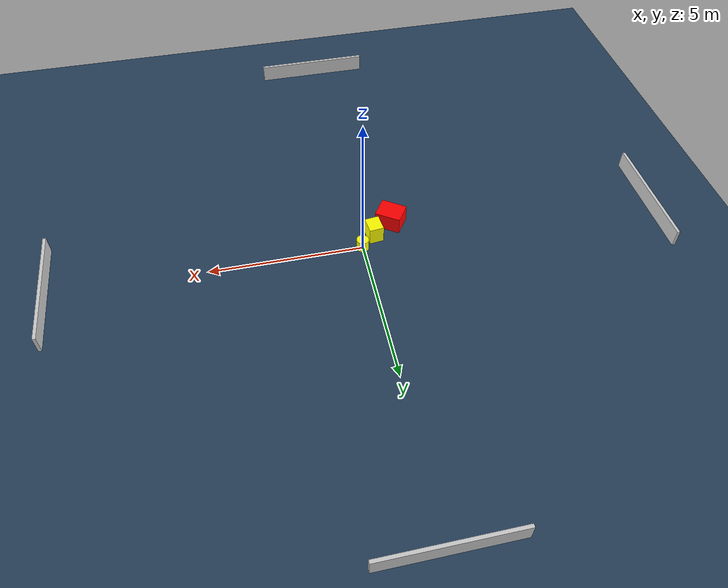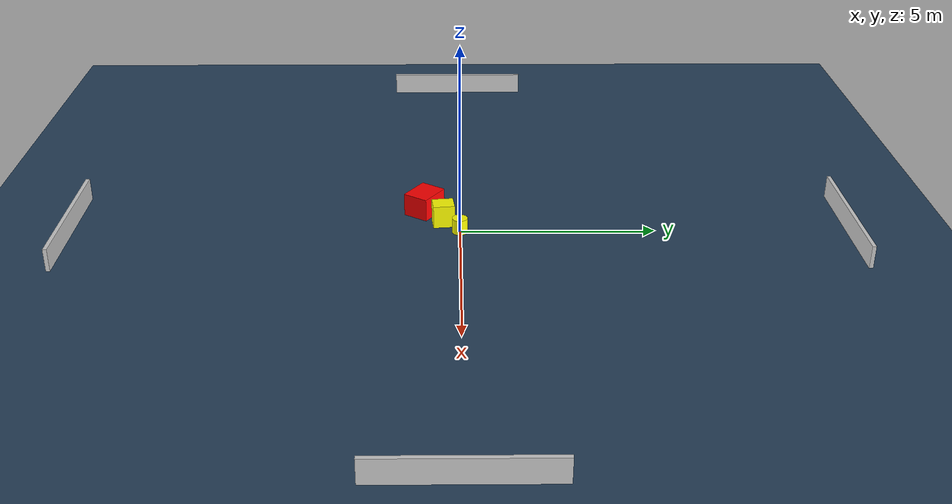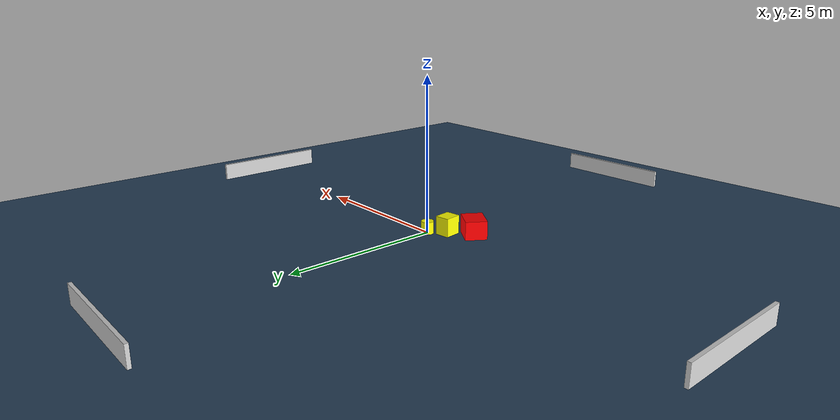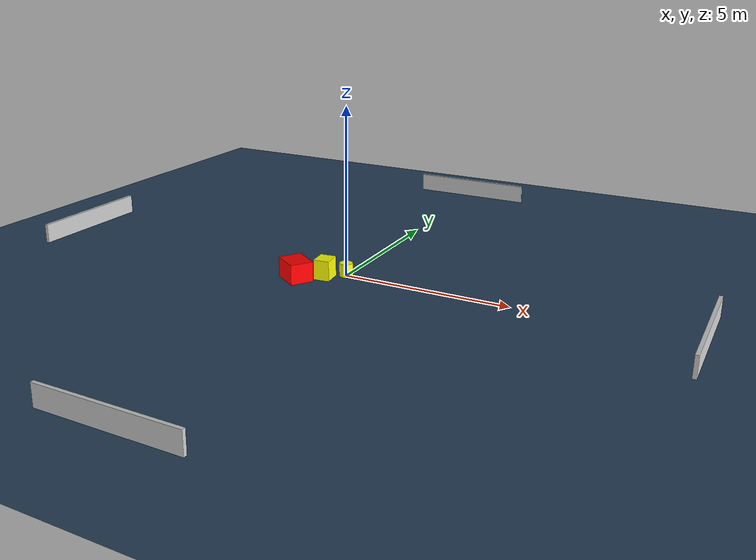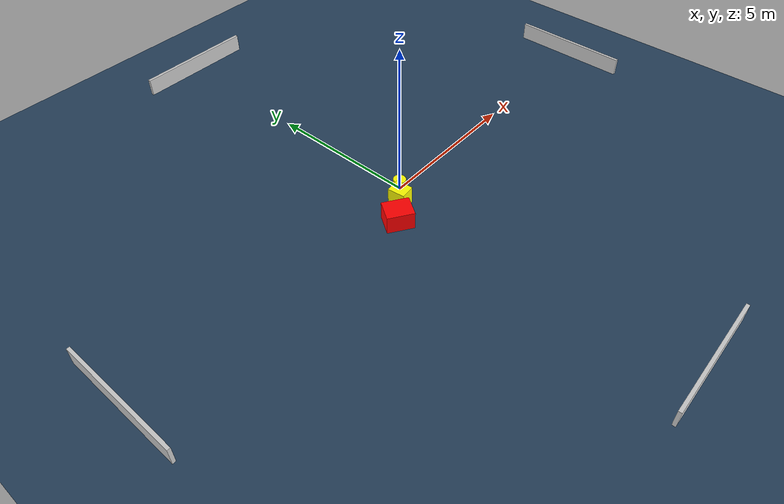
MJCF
<?xml version="1.0" ?>
<mujoco model="generated_environment">
  <option timestep="0.01" integrator="RK4" cone="elliptic"/>
  <default>
    <geom density="1"/>
  </default>
  <asset>
    <texture builtin="gradient" height="3072" name="skybox" rgb1="0.3 0.5 0.7" rgb2="0 0 0" type="skybox" width="512"/>
    <texture builtin="checker" height="300" name="groundplane" rgb1="0.2 0.3 0.4" rgb2="0.1 0.2 0.3" type="2d" width="300"/>
    <material name="groundplane" reflectance="0.2" texrepeat="5 5" texture="groundplane"/>
  </asset>
  <worldbody>
    <light dir="0 0 -1" directional="true" pos="0 0 1.5"/>
    <geom condim="3" friction="0.5 0.005 0.001" material="groundplane" name="floor" pos="0 0 0" size="0 0 0.05" type="plane"/>
    <body name="walls">
      <geom name="wall_1" condim="4" pos="-10.0 0.0 0.3" rgba="0.800000011920929 0.800000011920929 0.800000011920929 1.0" size="0.05 2.0 0.3" type="box"/>
      <geom name="wall_2" condim="4" pos="10.0 0.0 0.3" rgba="0.800000011920929 0.800000011920929 0.800000011920929 1.0" size="0.05 2.0 0.3" type="box"/>
      <geom name="wall_3" condim="4" pos="0.0 -10.0 0.3" rgba="0.800000011920929 0.800000011920929 0.800000011920929 1.0" size="2.0 0.05 0.3" type="box"/>
      <geom name="wall_4" condim="4" pos="0.0 10.0 0.3" rgba="0.800000011920929 0.800000011920929 0.800000011920929 1.0" size="2.0 0.05 0.3" type="box"/>
    </body>
    <body name="robot">
      <joint name="joint_x" type="slide" pos="0 0 0" axis="1 0 0"/>
      <joint name="joint_y" type="slide" pos="0 0 0" axis="0 1 0"/>
      <geom name="robot" type="cylinder" pos="0.0 0.0 0.2" size="0.2 0.2 0.0" mass="5.0" friction="1.0 0.005 0.0001" condim="4" rgba="1.0 1.0 0.0 1.0"/>
    </body>
    <body name="obstacle_1_movable">
      <geom name="obstacle_1_movable" condim="4" pos="-0.47291872649788397 -0.42786701909638797 0.3" euler="0 0 186.30863749286598" friction="0.0 0.005 0.001" rgba="1.0 1.0 0.0 1.0" size="0.23722023562784234 0.27683709325485273 0.3" type="box" mass="0.1"/>
      <joint type="free"/>
    </body>
    <body name="obstacle_2_static">
      <geom name="obstacle_2_static" condim="4" pos="-1.1533674533675415 -0.9254870644147436 0.3" euler="0 0 56.023618046532064" friction="0.0 0.005 0.001" rgba="1.0 0.0 0.0 1.0" size="0.34723908919404556 0.42639331453312884 0.3" type="box"/>
    </body>
  </worldbody>
  <actuator>
    <motor name="actuator_x" joint="joint_x" gear="1" ctrlrange="-1 1"/>
    <motor name="actuator_y" joint="joint_y" gear="1" ctrlrange="-1 1"/>
  </actuator>
</mujoco>
